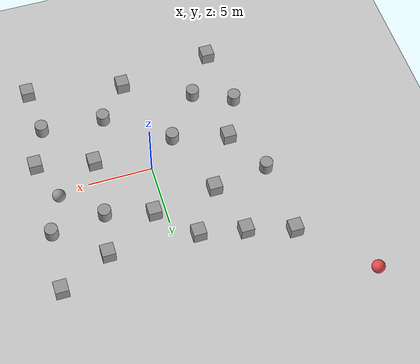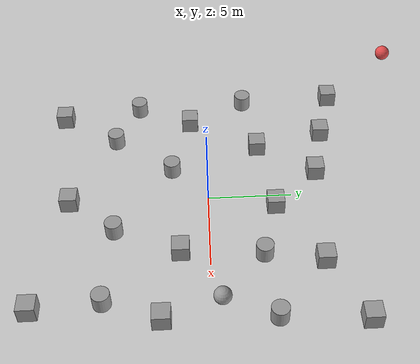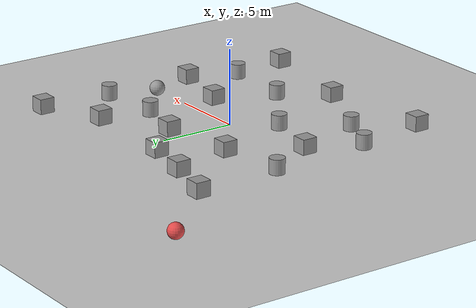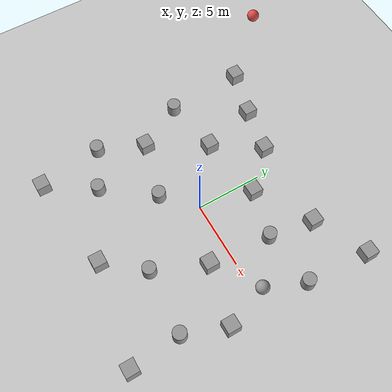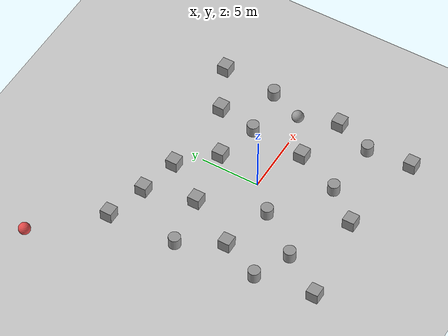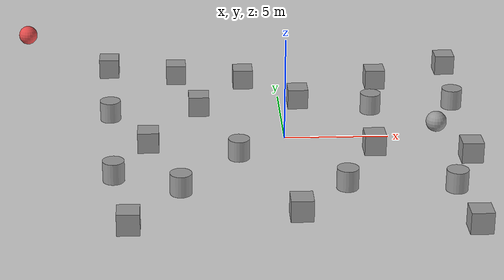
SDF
<sdf version="1.6">
 <world name="default">
  <light name="sun" type="directional">
   <pose>0 0 10 0 -0 0</pose>
   <diffuse>0.8 0.8 0.8 1</diffuse>
   <specular>0.1 0.1 0.1 1</specular>
   <attenuation>
    <range>1000</range>
    <constant>0.9</constant>
    <linear>0.01</linear>
    <quadratic>0.001</quadratic>
   </attenuation>
   <direction>-0.5 0.5 -1</direction>
  </light>
  <model name="ground_plane">
   <static>1</static>
   <link name="link">
    <collision name="collision">
     <geometry><plane><normal>0 0 1</normal><size>100 100</size></plane></geometry>
     <surface><friction><ode><mu>100</mu><mu2>50</mu2></ode></friction></surface>
    </collision>
    <visual name="visual">
     <cast_shadows>0</cast_shadows>
     <geometry><plane><normal>0 0 1</normal><size>100 100</size></plane></geometry>
     <material>
      <script><uri>file://media/materials/scripts/gazebo.material</uri><name>Gazebo/Grey</name></script>
     </material>
    </visual>
   </link>
  </model>
  <gravity>0 0 -9.8</gravity>
  <magnetic_field>6e-06 2.3e-05 -4.2e-05</magnetic_field>
  <atmosphere type="adiabatic"/>
  <physics name="default_physics" default="0" type="ode">
   <max_step_size>0.001</max_step_size>
   <real_time_factor>1</real_time_factor>
   <real_time_update_rate>1000</real_time_update_rate>
  </physics>
  <scene><ambient>0.4 0.4 0.4 1</ambient><background>0.7 0.7 0.7 1</background><shadows>1</shadows></scene>
  <spherical_coordinates>
   <surface_model>EARTH_WGS84</surface_model>
   <latitude_deg>0</latitude_deg>
   <longitude_deg>0</longitude_deg>
   <elevation>0</elevation>
   <heading_deg>0</heading_deg>
  </spherical_coordinates>
  <model name="unit_box_0">
   <static>1</static>
   <pose>-4.04425 3.20234 0.499995 0 1e-05 0</pose>
   <link name="link">
    <inertial>
     <mass>1</mass>
     <inertia>
      <ixx>0.166667</ixx>
      <ixy>0</ixy>
      <ixz>0</ixz>
      <iyy>0.166667</iyy>
      <iyz>0</iyz>
      <izz>0.166667</izz>
     </inertia>
    </inertial>
    <collision name="collision"><geometry><box><size>1 1 1</size></box></geometry></collision>
    <visual name="visual">
     <geometry><box><size>1 1 1</size></box></geometry>
     <material>
      <script><name>Gazebo/Grey</name><uri>file://media/materials/scripts/gazebo.material</uri></script>
     </material>
    </visual>
   </link>
  </model>
  <model name="unit_box_1">
   <static>1</static>
   <pose>-5.14539 7.37162 0.499995 1e-05 -0 0</pose>
   <link name="link">
    <inertial>
     <mass>1</mass>
     <inertia>
      <ixx>0.166667</ixx>
      <ixy>0</ixy>
      <ixz>0</ixz>
      <iyy>0.166667</iyy>
      <iyz>0</iyz>
      <izz>0.166667</izz>
     </inertia>
    </inertial>
    <collision name="collision"><geometry><box><size>1 1 1</size></box></geometry></collision>
    <visual name="visual">
     <geometry><box><size>1 1 1</size></box></geometry>
     <material>
      <script><name>Gazebo/Grey</name><uri>file://media/materials/scripts/gazebo.material</uri></script>
     </material>
    </visual>
   </link>
  </model>
  <model name="unit_box_2">
   <static>1</static>
   <pose>-1.71052 6.6387 0.499995 0 1e-05 0</pose>
   <link name="link">
    <inertial>
     <mass>1</mass>
     <inertia>
      <ixx>0.166667</ixx>
      <ixy>0</ixy>
      <ixz>0</ixz>
      <iyy>0.166667</iyy>
      <iyz>0</iyz>
      <izz>0.166667</izz>
     </inertia>
    </inertial>
    <collision name="collision"><geometry><box><size>1 1 1</size></box></geometry></collision>
    <visual name="visual">
     <geometry><box><size>1 1 1</size></box></geometry>
     <material>
      <script><name>Gazebo/Grey</name><uri>file://media/materials/scripts/gazebo.material</uri></script>
     </material>
    </visual>
   </link>
  </model>
  <model name="unit_box_3">
   <static>1</static>
   <pose>-6.50286 -0.994075 0.499995 -1e-05 0 0</pose>
   <link name="link">
    <inertial>
     <mass>1</mass>
     <inertia>
      <ixx>0.166667</ixx>
      <ixy>0</ixy>
      <ixz>0</ixz>
      <iyy>0.166667</iyy>
      <iyz>0</iyz>
      <izz>0.166667</izz>
     </inertia>
    </inertial>
    <collision name="collision"><geometry><box><size>1 1 1</size></box></geometry></collision>
    <visual name="visual">
     <geometry><box><size>1 1 1</size></box></geometry>
     <material>
      <script><name>Gazebo/Grey</name><uri>file://media/materials/scripts/gazebo.material</uri></script>
     </material>
    </visual>
   </link>
  </model>
  <model name="unit_box_4">
   <static>1</static>
   <pose>5.0846 6.34804 0.499995 0 1e-05 0</pose>
   <link name="link">
    <inertial>
     <mass>1</mass>
     <inertia>
      <ixx>0.166667</ixx>
      <ixy>0</ixy>
      <ixz>0</ixz>
      <iyy>0.166667</iyy>
      <iyz>0</iyz>
      <izz>0.166667</izz>
     </inertia>
    </inertial>
    <collision name="collision"><geometry><box><size>1 1 1</size></box></geometry></collision>
    <visual name="visual">
     <geometry><box><size>1 1 1</size></box></geometry>
     <material>
      <script><name>Gazebo/Grey</name><uri>file://media/materials/scripts/gazebo.material</uri></script>
     </material>
    </visual>
   </link>
  </model>
  <model name="unit_cylinder_0">
   <static>1</static>
   <pose>4.48937 3.02562 0.499993 -3e-06 2e-06 0</pose>
   <link name="link">
    <inertial>
     <mass>1</mass>
     <inertia><ixx>0.145833</ixx><ixy>0</ixy><ixz>0</ixz><iyy>0.145833</iyy><iyz>0</iyz><izz>0.125</izz></inertia>
    </inertial>
    <collision name="collision">
     <geometry><cylinder><radius>0.5</radius><length>1</length></cylinder></geometry>
    </collision>
    <visual name="visual">
     <geometry><cylinder><radius>0.5</radius><length>1</length></cylinder></geometry>
     <material>
      <script><name>Gazebo/Grey</name><uri>file://media/materials/scripts/gazebo.material</uri></script>
     </material>
    </visual>
   </link>
  </model>
  <model name="unit_cylinder_1">
   <static>1</static>
   <pose>-2.26939 -2.15261 0.499998 3e-06 -2e-06 0</pose>
   <link name="link">
    <inertial>
     <mass>1</mass>
     <inertia><ixx>0.145833</ixx><ixy>0</ixy><ixz>0</ixz><iyy>0.145833</iyy><iyz>0</iyz><izz>0.125</izz></inertia>
    </inertial>
    <collision name="collision">
     <geometry><cylinder><radius>0.5</radius><length>1</length></cylinder></geometry>
    </collision>
    <visual name="visual">
     <geometry><cylinder><radius>0.5</radius><length>1</length></cylinder></geometry>
     <material>
      <script><name>Gazebo/Grey</name><uri>file://media/materials/scripts/gazebo.material</uri></script>
     </material>
    </visual>
   </link>
  </model>
  <model name="unit_cylinder_2">
   <static>1</static>
   <pose>-5.00778 -5.72124 0.499993 -3e-06 2e-06 0</pose>
   <link name="link">
    <inertial>
     <mass>1</mass>
     <inertia><ixx>0.145833</ixx><ixy>0</ixy><ixz>0</ixz><iyy>0.145833</iyy><iyz>0</iyz><izz>0.125</izz></inertia>
    </inertial>
    <collision name="collision">
     <geometry><cylinder><radius>0.5</radius><length>1</length></cylinder></geometry>
    </collision>
    <visual name="visual">
     <geometry><cylinder><radius>0.5</radius><length>1</length></cylinder></geometry>
     <material>
      <script><name>Gazebo/Grey</name><uri>file://media/materials/scripts/gazebo.material</uri></script>
     </material>
    </visual>
   </link>
  </model>
  <model name="unit_box_5">
   <static>1</static>
   <pose>4.12434 -1.66097 0.499995 0 1e-05 0</pose>
   <link name="link">
    <inertial>
     <mass>1</mass>
     <inertia>
      <ixx>0.166667</ixx>
      <ixy>0</ixy>
      <ixz>0</ixz>
      <iyy>0.166667</iyy>
      <iyz>0</iyz>
      <izz>0.166667</izz>
     </inertia>
    </inertial>
    <collision name="collision"><geometry><box><size>1 1 1</size></box></geometry></collision>
    <visual name="visual">
     <geometry><box><size>1 1 1</size></box></geometry>
     <material>
      <script><name>Gazebo/Grey</name><uri>file://media/materials/scripts/gazebo.material</uri></script>
     </material>
    </visual>
   </link>
  </model>
  <model name="unit_cylinder_3">
   <static>1</static>
   <pose>2.4509 -5.46721 0.499993 -3e-06 2e-06 0</pose>
   <link name="link">
    <inertial>
     <mass>1</mass>
     <inertia><ixx>0.145833</ixx><ixy>0</ixy><ixz>0</ixz><iyy>0.145833</iyy><iyz>0</iyz><izz>0.125</izz></inertia>
    </inertial>
    <collision name="collision">
     <geometry><cylinder><radius>0.5</radius><length>1</length></cylinder></geometry>
    </collision>
    <visual name="visual">
     <geometry><cylinder><radius>0.5</radius><length>1</length></cylinder></geometry>
     <material>
      <script><name>Gazebo/Grey</name><uri>file://media/materials/scripts/gazebo.material</uri></script>
     </material>
    </visual>
   </link>
  </model>
  <model name="unit_sphere_1">
   <static>1</static>
   <pose>7.39829 0.553822 0.5 0 -0 0</pose>
   <link name="link">
    <inertial>
     <mass>1</mass>
     <inertia><ixx>0.1</ixx><ixy>0</ixy><ixz>0</ixz><iyy>0.1</iyy><iyz>0</iyz><izz>0.1</izz></inertia>
    </inertial>
    <collision name="collision"><geometry><sphere><radius>0.5</radius></sphere></geometry></collision>
    <visual name="visual">
     <geometry><sphere><radius>0.5</radius></sphere></geometry>
     <material>
      <script><name>Gazebo/Grey</name><uri>file://media/materials/scripts/gazebo.material</uri></script>
     </material>
    </visual>
   </link>
  </model>
  <model name="unit_cylinder_4">
   <static>1</static>
   <pose>7.31786 -5.83205 0.499998 3e-06 -3e-06 0</pose>
   <link name="link">
    <inertial>
     <mass>1</mass>
     <inertia><ixx>0.145833</ixx><ixy>0</ixy><ixz>0</ixz><iyy>0.145833</iyy><iyz>0</iyz><izz>0.125</izz></inertia>
    </inertial>
    <collision name="collision">
     <geometry><cylinder><radius>0.5</radius><length>1</length></cylinder></geometry>
    </collision>
    <visual name="visual">
     <geometry><cylinder><radius>0.5</radius><length>1</length></cylinder></geometry>
     <material>
      <script><name>Gazebo/Grey</name><uri>file://media/materials/scripts/gazebo.material</uri></script>
     </material>
    </visual>
   </link>
  </model>
  <model name="unit_box_6">
   <static>1</static>
   <pose>-7.26809 -9.17929 0.499995 -1e-05 0 0</pose>
   <link name="link">
    <inertial>
     <mass>1</mass>
     <inertia>
      <ixx>0.166667</ixx>
      <ixy>0</ixy>
      <ixz>0</ixz>
      <iyy>0.166667</iyy>
      <iyz>0</iyz>
      <izz>0.166667</izz>
     </inertia>
    </inertial>
    <collision name="collision"><geometry><box><size>1 1 1</size></box></geometry></collision>
    <visual name="visual">
     <geometry><box><size>1 1 1</size></box></geometry>
     <material>
      <script><name>Gazebo/Grey</name><uri>file://media/materials/scripts/gazebo.material</uri></script>
     </material>
    </visual>
   </link>
  </model>
  <model name="unit_box_7">
   <static>1</static>
   <pose>7.65097 -9.61432 0.499995 0 1e-05 0</pose>
   <link name="link">
    <inertial>
     <mass>1</mass>
     <inertia>
      <ixx>0.166667</ixx>
      <ixy>0</ixy>
      <ixz>0</ixz>
      <iyy>0.166667</iyy>
      <iyz>0</iyz>
      <izz>0.166667</izz>
     </inertia>
    </inertial>
    <collision name="collision"><geometry><box><size>1 1 1</size></box></geometry></collision>
    <visual name="visual">
     <geometry><box><size>1 1 1</size></box></geometry>
     <material>
      <script><name>Gazebo/Grey</name><uri>file://media/materials/scripts/gazebo.material</uri></script>
     </material>
    </visual>
   </link>
  </model>
  <model name="unit_box_8">
   <static>1</static>
   <pose>0.166115 -8.22319 0.499995 -1e-05 0 0</pose>
   <link name="link">
    <inertial>
     <mass>1</mass>
     <inertia>
      <ixx>0.166667</ixx>
      <ixy>0</ixy>
      <ixz>0</ixz>
      <iyy>0.166667</iyy>
      <iyz>0</iyz>
      <izz>0.166667</izz>
     </inertia>
    </inertial>
    <collision name="collision"><geometry><box><size>1 1 1</size></box></geometry></collision>
    <visual name="visual">
     <geometry><box><size>1 1 1</size></box></geometry>
     <material>
      <script><name>Gazebo/Grey</name><uri>file://media/materials/scripts/gazebo.material</uri></script>
     </material>
    </visual>
   </link>
  </model>
  <model name="unit_box_9">
   <static>1</static>
   <pose>0.923208 3.95612 0.499995 0 1e-05 0</pose>
   <link name="link">
    <inertial>
     <mass>1</mass>
     <inertia>
      <ixx>0.166667</ixx>
      <ixy>0</ixy>
      <ixz>0</ixz>
      <iyy>0.166667</iyy>
      <iyz>0</iyz>
      <izz>0.166667</izz>
     </inertia>
    </inertial>
    <collision name="collision"><geometry><box><size>1 1 1</size></box></geometry></collision>
    <visual name="visual">
     <geometry><box><size>1 1 1</size></box></geometry>
     <material>
      <script><name>Gazebo/Grey</name><uri>file://media/materials/scripts/gazebo.material</uri></script>
     </material>
    </visual>
   </link>
  </model>
  <model name="unit_box_10">
   <static>1</static>
   <pose>-8.63656 8.3542 0.499995 -1e-05 0 0</pose>
   <link name="link">
    <inertial>
     <mass>1</mass>
     <inertia>
      <ixx>0.166667</ixx>
      <ixy>0</ixy>
      <ixz>0</ixz>
      <iyy>0.166667</iyy>
      <iyz>0</iyz>
      <izz>0.166667</izz>
     </inertia>
    </inertial>
    <collision name="collision"><geometry><box><size>1 1 1</size></box></geometry></collision>
    <visual name="visual">
     <geometry><box><size>1 1 1</size></box></geometry>
     <material>
      <script><name>Gazebo/Grey</name><uri>file://media/materials/scripts/gazebo.material</uri></script>
     </material>
    </visual>
   </link>
  </model>
  <model name="unit_box_11">
   <static>1</static>
   <pose>8.99149 8.22035 0.499995 0 1e-05 0</pose>
   <link name="link">
    <inertial>
     <mass>1</mass>
     <inertia>
      <ixx>0.166667</ixx>
      <ixy>0</ixy>
      <ixz>0</ixz>
      <iyy>0.166667</iyy>
      <iyz>0</iyz>
      <izz>0.166667</izz>
     </inertia>
    </inertial>
    <collision name="collision"><geometry><box><size>1 1 1</size></box></geometry></collision>
    <visual name="visual">
     <geometry><box><size>1 1 1</size></box></geometry>
     <material>
      <script><name>Gazebo/Grey</name><uri>file://media/materials/scripts/gazebo.material</uri></script>
     </material>
    </visual>
   </link>
  </model>
  <model name="unit_cylinder_5">
   <static>1</static>
   <pose>-8.39409 2.53726 0.499992 -3e-06 4e-06 0</pose>
   <link name="link">
    <inertial>
     <mass>1</mass>
     <inertia><ixx>0.145833</ixx><ixy>0</ixy><ixz>0</ixz><iyy>0.145833</iyy><iyz>0</iyz><izz>0.125</izz></inertia>
    </inertial>
    <collision name="collision">
     <geometry><cylinder><radius>0.5</radius><length>1</length></cylinder></geometry>
    </collision>
    <visual name="visual">
     <geometry><cylinder><radius>0.5</radius><length>1</length></cylinder></geometry>
     <material>
      <script><name>Gazebo/Grey</name><uri>file://media/materials/scripts/gazebo.material</uri></script>
     </material>
    </visual>
   </link>
  </model>
  <model name="unit_cylinder_6">
   <static>1</static>
   <pose>8.62944 3.46707 0.499998 3e-06 4e-06 -0</pose>
   <link name="link">
    <inertial>
     <mass>1</mass>
     <inertia><ixx>0.145833</ixx><ixy>0</ixy><ixz>0</ixz><iyy>0.145833</iyy><iyz>0</iyz><izz>0.125</izz></inertia>
    </inertial>
    <collision name="collision">
     <geometry><cylinder><radius>0.5</radius><length>1</length></cylinder></geometry>
    </collision>
    <visual name="visual">
     <geometry><cylinder><radius>0.5</radius><length>1</length></cylinder></geometry>
     <material>
      <script><name>Gazebo/Grey</name><uri>file://media/materials/scripts/gazebo.material</uri></script>
     </material>
    </visual>
   </link>
  </model>
  <model name="unit_cylinder_7">
   <static>1</static>
   <pose>-8.03787 -4.33587 0.499997 3e-06 3e-06 0</pose>
   <link name="link">
    <inertial>
     <mass>1</mass>
     <inertia><ixx>0.145833</ixx><ixy>0</ixy><ixz>0</ixz><iyy>0.145833</iyy><iyz>0</iyz><izz>0.125</izz></inertia>
    </inertial>
    <collision name="collision">
     <geometry><cylinder><radius>0.5</radius><length>1</length></cylinder></geometry>
    </collision>
    <visual name="visual">
     <geometry><cylinder><radius>0.5</radius><length>1</length></cylinder></geometry>
     <material>
      <script><name>Gazebo/Grey</name><uri>file://media/materials/scripts/gazebo.material</uri></script>
     </material>
    </visual>
   </link>
  </model>
  <model name="unit_box_12">
   <static>1</static>
   <pose>8.52195 -2.66946 0.5 0 -0 0</pose>
   <link name="link">
    <inertial>
     <mass>1</mass>
     <inertia>
      <ixx>0.166667</ixx>
      <ixy>0</ixy>
      <ixz>0</ixz>
      <iyy>0.166667</iyy>
      <iyz>0</iyz>
      <izz>0.166667</izz>
     </inertia>
    </inertial>
    <collision name="collision"><geometry><box><size>1 1 1</size></box></geometry></collision>
    <visual name="visual">
     <geometry><box><size>1 1 1</size></box></geometry>
     <material>
      <script><name>Gazebo/Grey</name><uri>file://media/materials/scripts/gazebo.material</uri></script>
     </material>
    </visual>
   </link>
  </model>
  <model name="unit_sphere_0_0">
   <pose>-13.2814 13.1262 0.5 0 -0 0</pose>
   <link name="link">
    <inertial>
     <mass>1</mass>
     <inertia><ixx>0.1</ixx><ixy>0</ixy><ixz>0</ixz><iyy>0.1</iyy><iyz>0</iyz><izz>0.1</izz></inertia>
    </inertial>
    <visual name="visual">
     <geometry><sphere><radius>0.5</radius></sphere></geometry>
     <material>
      <script><name>Gazebo/Grey</name><uri>file://media/materials/scripts/gazebo.material</uri></script>
      <ambient>0.9 0.3 0.3 1</ambient>
      <diffuse>0.7 0.7 0.7 1</diffuse>
      <specular>0 0.01 0.01 1</specular>
      <emissive>0 0 0 1</emissive>
      <shader type="vertex"><normal_map>__default__</normal_map></shader>
     </material>
    </visual>
    <collision name="collision">
     <geometry><sphere><radius>0.5</radius></sphere></geometry>
     <surface>
      <friction>
       <ode><mu>1</mu><mu2>1</mu2><fdir1>0 0 0</fdir1><slip1>0</slip1><slip2>0</slip2></ode>
       <torsional>
        <coefficient>1</coefficient>
        <patch_radius>0</patch_radius>
        <surface_radius>0</surface_radius>
        <use_patch_radius>1</use_patch_radius>
        <ode><slip>0</slip></ode>
       </torsional>
      </friction>
      <bounce><restitution_coefficient>0</restitution_coefficient><threshold>1e+06</threshold></bounce>
      <contact>
       <collide_without_contact>0</collide_without_contact>
       <collide_without_contact_bitmask>1</collide_without_contact_bitmask>
       <collide_bitmask>1</collide_bitmask>
       <ode>
        <soft_cfm>0</soft_cfm>
        <soft_erp>0.2</soft_erp>
        <kp>1e+13</kp>
        <kd>1</kd>
        <max_vel>0.01</max_vel>
        <min_depth>0</min_depth>
       </ode>
       <bullet>
        <split_impulse>1</split_impulse>
        <split_impulse_penetration_threshold>-0.01</split_impulse_penetration_threshold>
        <soft_cfm>0</soft_cfm>
        <soft_erp>0.2</soft_erp>
        <kp>1e+13</kp>
        <kd>1</kd>
       </bullet>
      </contact>
     </surface>
    </collision>
   </link>
  </model>
 </world>
</sdf>
